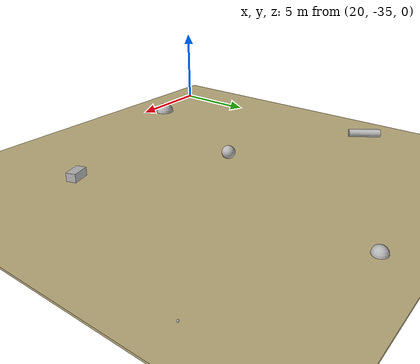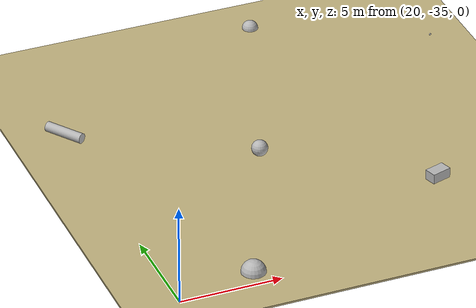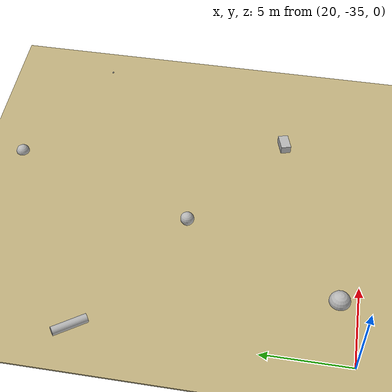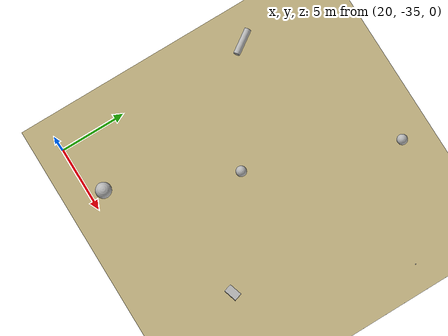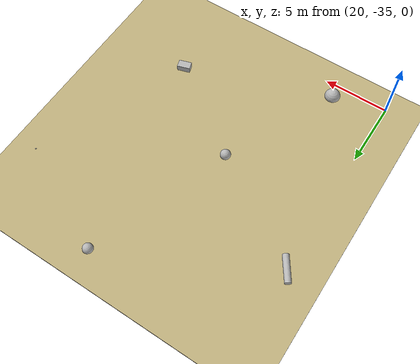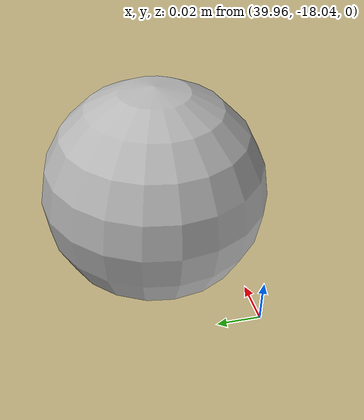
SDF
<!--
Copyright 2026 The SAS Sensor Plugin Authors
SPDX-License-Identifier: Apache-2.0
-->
<?xml version="1.0"?>
<sdf version="1.6">
  <world name="sas_seabed">
    <physics type="ode">
      <max_step_size>0.001</max_step_size>
      <real_time_factor>1.0</real_time_factor>
      <real_time_update_rate>1000</real_time_update_rate>
    </physics>
    <scene>
      <ambient>0.2 0.3 0.4 1</ambient>
      <background>0.0 0.1 0.2 1</background>
      <shadows>false</shadows>
    </scene>
    <include><uri>model://sun</uri></include>

    <!-- Sand seabed, top surface at z = 0 -->
    <model name="seabed">
      <static>true</static>
      <link name="link">
        <collision name="c">
          <pose>0 0 -0.05 0 0 0</pose>
          <geometry><box><size>400 400 0.1</size></box></geometry>
          <laser_retro>0.002</laser_retro>
        </collision>
        <visual name="v">
          <pose>0 0 -0.05 0 0 0</pose>
          <geometry><box><size>400 400 0.1</size></box></geometry>
          <laser_retro>0.002</laser_retro>
          <material><ambient>0.76 0.70 0.50 1</ambient><diffuse>0.76 0.70 0.50 1</diffuse></material>
        </visual>
      </link>
    </model>

    <!-- Cylinder (mine-like), 0.5 m diameter, 2 m long, lying on the seabed -->
    <model name="cylinder_target">
      <static>true</static>
      <pose>20 -20 0.25 1.5708 0 0.6</pose>
      <link name="link">
        <collision name="c"><geometry><cylinder><radius>0.25</radius><length>2.0</length></cylinder></geometry><laser_retro>0.3</laser_retro></collision>
        <visual name="v"><geometry><cylinder><radius>0.25</radius><length>2.0</length></cylinder></geometry><laser_retro>0.3</laser_retro></visual>
      </link>
    </model>
    <!-- Sphere, 0.8 m diameter -->
    <model name="sphere_target">
      <static>true</static>
      <pose>28 -25 0.4 0 0 0</pose>
      <link name="link">
        <collision name="c"><geometry><sphere><radius>0.4</radius></sphere></geometry><laser_retro>0.3</laser_retro></collision>
        <visual name="v"><geometry><sphere><radius>0.4</radius></sphere></geometry><laser_retro>0.3</laser_retro></visual>
      </link>
    </model>
    <!-- Box, 1.0 x 0.6 x 0.5 m -->
    <model name="box_target">
      <static>true</static>
      <pose>35 -30 0.25 0 0 0.3</pose>
      <link name="link">
        <collision name="c"><geometry><box><size>1.0 0.6 0.5</size></box></geometry><laser_retro>0.3</laser_retro></collision>
        <visual name="v"><geometry><box><size>1.0 0.6 0.5</size></box></geometry><laser_retro>0.3</laser_retro></visual>
      </link>
    </model>
    <!-- Small bright sphere; below the ray resolution at long range, so it may give few scatterers -->
    <model name="small_target">
      <static>true</static>
      <pose>40 -18 0.05 0 0 0</pose>
      <link name="link">
        <collision name="c"><geometry><sphere><radius>0.05</radius></sphere></geometry><laser_retro>1.0</laser_retro></collision>
        <visual name="v"><geometry><sphere><radius>0.05</radius></sphere></geometry><laser_retro>1.0</laser_retro></visual>
      </link>
    </model>
    <!-- Rocks: half-buried spheres -->
    <model name="rock_1">
      <static>true</static>
      <pose>24 -34 0 0 0 0</pose>
      <link name="link">
        <collision name="c"><geometry><sphere><radius>0.6</radius></sphere></geometry><laser_retro>0.02</laser_retro></collision>
        <visual name="v"><geometry><sphere><radius>0.6</radius></sphere></geometry><laser_retro>0.02</laser_retro></visual>
      </link>
    </model>
    <model name="rock_2">
      <static>true</static>
      <pose>32 -14 0 0 0 0</pose>
      <link name="link">
        <collision name="c"><geometry><sphere><radius>0.4</radius></sphere></geometry><laser_retro>0.02</laser_retro></collision>
        <visual name="v"><geometry><sphere><radius>0.4</radius></sphere></geometry><laser_retro>0.02</laser_retro></visual>
      </link>
    </model>
  </world>
</sdf>
